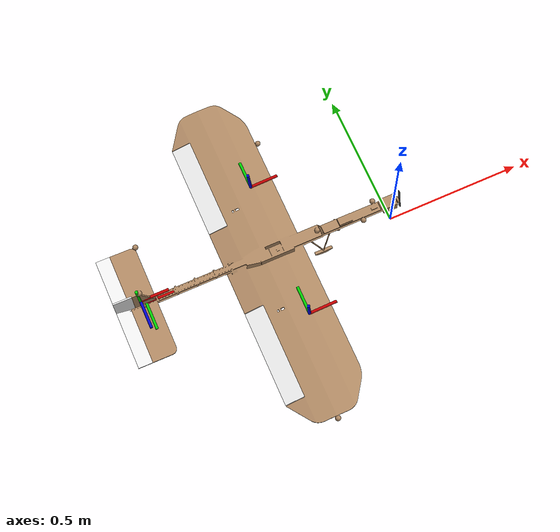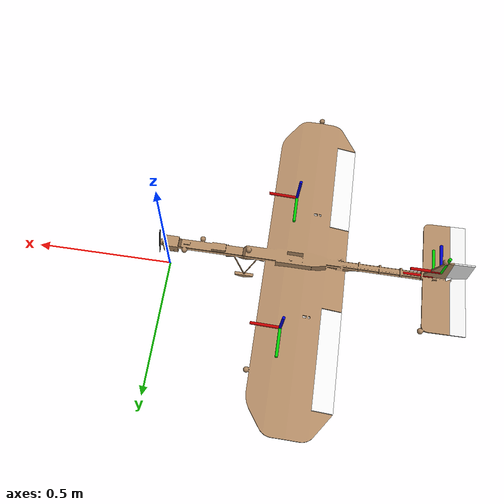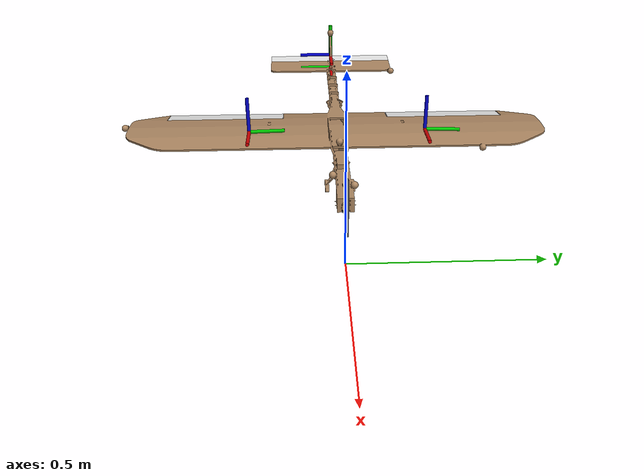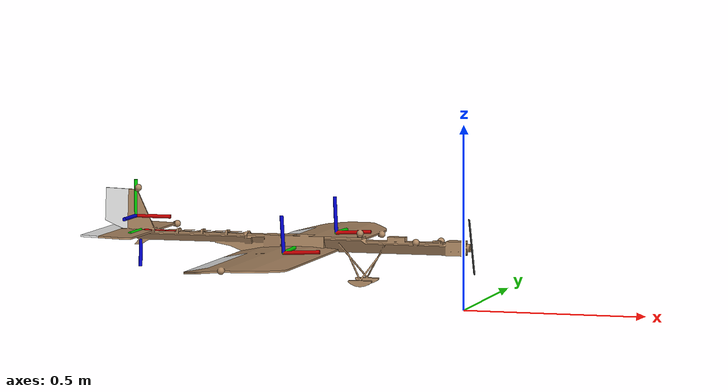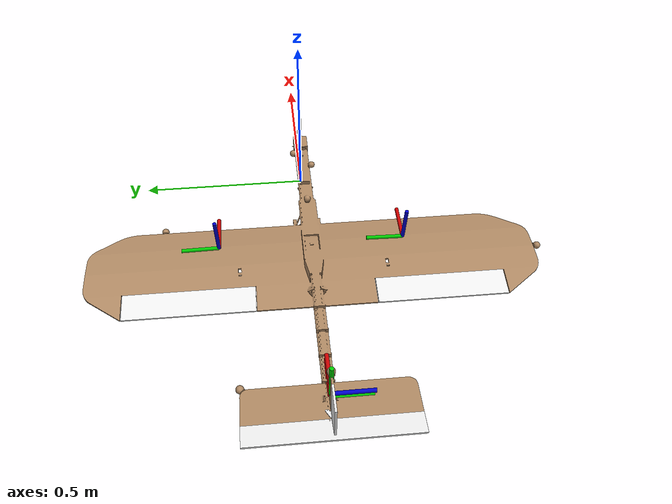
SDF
<?xml version='1.0'?>
<sdf version='1.6'>
  <model name="mini_fixedwing_11">
    <pose>0 0 0.15 0 0 0</pose>
    <link name='fuselage'>
      <inertial>
        <pose>-0.4173 0 0.0175 0 0 0</pose>
        <mass>0.268</mass>
        <inertia>
          <ixx>1.04e-2</ixx>
          <iyy>1.32e-2</iyy>
          <izz>2.33e-2</izz>
        </inertia>
      </inertial>
      <collision name='collision'>
        <pose>0 0 0 0 0 0</pose>
        <geometry>
          <mesh>
            <uri>model://mini_fixedwing_11/meshes/stl/fuselage.stl</uri>
          </mesh>
        </geometry>
        <surface>
          <friction>
            <ode>
              <mu>0.2</mu>
              <mu2>0.2</mu2>
            </ode>
          </friction>
          <contact>
            <ode>
              <max_vel>0.1</max_vel>
              <min_depth>0.001</min_depth>
            </ode>
          </contact>
        </surface>
      </collision>
      <visual name='visual'>
        <pose>0 0 0 0 0 0</pose>
        <geometry>
          <mesh>
            <uri>model://mini_fixedwing_11/meshes/stl/fuselage.stl</uri>
          </mesh>
        </geometry>
        <material>
          <ambient>0.678 0.529 0.384 1</ambient>
          <diffuse>0.678 0.529 0.384 1</diffuse>
          <specular>0.678 0.529 0.384 1</specular>
        </material>
      </visual>
      <visual name='cp_vtail'>
        <pose>-0.93 0 0.079 1.57 0 0</pose>
        <geometry>
          <mesh>
            <scale>0.1 0.1 0.1</scale>
            <uri>model://mini_fixedwing_11/meshes/axes.dae</uri> </mesh>
        </geometry>
      </visual>
      <visual name='cp_htail'>
        <pose>-0.915 0 0.04 3.14 0.035 0</pose>
        <geometry>
          <mesh>
            <scale>0.1 0.1 0.1</scale>
            <uri>model://mini_fixedwing_11/meshes/axes.dae</uri> </mesh>
        </geometry>
      </visual>
      <visual name='cp_wing_left'>
        <pose>-0.43 0.25 0.02 -0.024 -0.052 0</pose>
        <geometry>
          <mesh>
            <scale>0.1 0.1 0.1</scale>
            <uri>model://mini_fixedwing_11/meshes/axes.dae</uri> </mesh>
        </geometry>
      </visual>
      <visual name='cp_wing_right'>
        <pose>-0.43 -0.25 0.02 0.024 -0.052 0</pose>
        <geometry>
          <mesh>
            <scale>0.1 0.1 0.1</scale>
            <uri>model://mini_fixedwing_11/meshes/axes.dae</uri> </mesh>
        </geometry>
      </visual>
    </link>

    <link name='rudder'>
      <inertial>
        <pose>-0.98 0 0.079</pose>
        <mass>0.003</mass>
        <inertia>
          <ixx>3.88e-6</ixx>
          <iyy>5.04e-6</iyy>
          <izz>1.33e-6</izz>
        </inertia>
      </inertial>
      <visual name='visual'>
        <pose>0 0 0 0 0 0</pose>
        <cast_shadows>0</cast_shadows>
        <geometry>
          <mesh>
            <uri>model://mini_fixedwing_11/meshes/stl/rudder.stl</uri>
          </mesh>
        </geometry>
        <material>
          <script>
            <name>Gazebo/White</name>
          </script>
        </material>
      </visual>
    </link>

    <joint name='rudder_joint' type='revolute'>
      <pose>-0.95 0 0.059</pose>
      <parent>fuselage</parent>
      <child>rudder</child>
      <axis>
        <xyz>0 0 1</xyz>
        <dynamics>
          <damping>0.1</damping>
        </dynamics>
        <limit>
          <lower>-0.5</lower>
          <upper>0.5</upper>
        </limit>
      </axis>
      <physics>
        <ode>
          <implicit_spring_damper>1</implicit_spring_damper>
        </ode>
      </physics>
    </joint>

    <link name='elevator'>
      <inertial>
        <pose>-0.995 0 0.04</pose>
        <mass>0.007</mass>
        <inertia>
          <ixx>7.37e-5</ixx>
          <iyy>1.86e-6</iyy>
          <izz>7.53e-5</izz>
        </inertia>
      </inertial>
      <visual name='visual'>
        <pose>0 0 0 0 0 0</pose>
        <cast_shadows>0</cast_shadows>
        <geometry>
          <mesh>
            <uri>model://mini_fixedwing_11/meshes/stl/elevator.stl</uri>
          </mesh>
        </geometry>
        <material>
          <script>
            <name>Gazebo/White</name>
          </script>
        </material>
      </visual>
    </link>

    <joint name='elevator_joint' type='revolute'>
      <pose>-0.97 0 0.04</pose>
      <parent>fuselage</parent>
      <child>elevator</child>
      <axis>
        <xyz>0 1 0</xyz>
        <dynamics>
          <damping>0.1</damping>
        </dynamics>
        <limit>
          <lower>-0.5</lower>
          <upper>0.5</upper>
        </limit>
      </axis>
      <physics>
        <ode>
          <implicit_spring_damper>1</implicit_spring_damper>
        </ode>
      </physics>
    </joint>

    <link name='aileron_left'>
      <inertial>
        <pose>-0.59 0.32 0.005</pose>
        <mass>0.008</mass>
        <inertia>
          <ixx>8.30e-5</ixx>
          <iyy>3.95e-6</iyy>
          <izz>8.67e-5</izz>
        </inertia>
      </inertial>
      <visual name='visual'>
        <pose>0 0 0 0 0 0</pose>
        <cast_shadows>0</cast_shadows>
        <geometry>
          <mesh>
            <uri>model://mini_fixedwing_11/meshes/stl/aileron_left.stl</uri>
          </mesh>
        </geometry>
        <material>
          <script>
            <name>Gazebo/White</name>
          </script>
        </material>
      </visual>
    </link>

    <joint name='aileron_left_joint' type='revolute'>
      <pose>-0.56 0.32 0.005</pose>
      <parent>fuselage</parent>
      <child>aileron_left</child>
      <axis>
        <xyz>0 -1 0</xyz>
        <dynamics>
          <damping>0.1</damping>
        </dynamics>
        <limit>
          <lower>-0.5</lower>
          <upper>0.5</upper>
        </limit>
      </axis>
      <physics>
        <ode>
          <implicit_spring_damper>1</implicit_spring_damper>
        </ode>
      </physics>
    </joint>

    <link name='aileron_right'>
      <inertial>
        <pose>-0.59 -0.32 0.005</pose>
        <mass>0.008</mass>
        <inertia>
          <ixx>8.3e-5</ixx>
          <iyy>3.95e-6</iyy>
          <izz>8.67e-5</izz>
        </inertia>
      </inertial>
      <visual name='visual'>
        <pose>0 0 0 0 0 0</pose>
        <cast_shadows>0</cast_shadows>
        <geometry>
          <mesh>
            <uri>model://mini_fixedwing_11/meshes/stl/aileron_right.stl</uri>
          </mesh>
        </geometry>
        <material>
          <script>
            <name>Gazebo/White</name>
          </script>
        </material>
      </visual>
    </link>

    <joint name='aileron_right_joint' type='revolute'>
      <pose>-0.56 -0.32 0.005</pose>
      <parent>fuselage</parent>
      <child>aileron_right</child>
      <axis>
        <xyz>0 -1 0</xyz>
        <dynamics>
          <damping>0.1</damping>
        </dynamics>
        <limit>
          <lower>-0.5</lower>
          <upper>0.5</upper>
        </limit>
      </axis>
      <physics>
        <ode>
          <implicit_spring_damper>1</implicit_spring_damper>
        </ode>
      </physics>
    </joint>

    <link name='propeller'>
      <pose>0 0 0 0 -0.1 0</pose>
      <inertial>
        <pose>0 0 0.02 0 0 0</pose>
        <mass>0.001</mass>
        <inertia>
          <ixx>1e-6</ixx>
          <iyy>1e-6</iyy>
          <izz>1e-6</izz>
        </inertia>
      </inertial>
      <visual name='visual'>
        <pose>0 0 0 0 0 0</pose>
        <cast_shadows>0</cast_shadows>
        <geometry>
          <mesh>
            <uri>model://mini_fixedwing_11/meshes/stl/propeller.stl</uri>
          </mesh>
        </geometry>
        <material>
          <script>
            <name>Gazebo/DarkGrey</name>
          </script>
        </material>
      </visual>
    </link>

    <joint name='propeller_joint' type='revolute'>
      <pose>0 0 0.02 0 0 0</pose>
      <parent>fuselage</parent>
      <child>propeller</child>
      <axis>
        <xyz>1 0 0</xyz>
      </axis>
    </joint>

    <include>
      <uri>model://gps</uri>
      <pose>0 0 0 0 0 0</pose>
      <name>gps</name>
    </include>
    <joint name='gps_joint' type='fixed'>
      <child>gps::link</child>
      <parent>fuselage</parent>
    </joint>

    <plugin name="vtail" filename="libLiftDragPlugin2.so">
      <pose>-0.93 0 0.079 1.57 0 0</pose>
      <cL0>0</cL0>
      <cLa>3.974</cLa>
      <cm0>0</cm0>
      <cma>0</cma>
      <cD0>0.03</cD0>
      <kcDcL>0.1</kcDcL>
      <alpha_stall>0.1832</alpha_stall>
      <cLa_stall>-3.85</cLa_stall>
      <cma_stall>0</cma_stall>
      <area>0.01855</area>
      <air_density>1.2041</air_density>
      <link_name>fuselage</link_name>
      <control_joint_name>rudder_joint</control_joint_name>
      <control_joint_rad_to_cL>1.0</control_joint_rad_to_cL>
      <control_joint_rad_to_cm>-0.25</control_joint_rad_to_cm>
    </plugin>

    <plugin name="htail" filename="libLiftDragPlugin2.so">
      <pose>-0.915 0 0.04 3.14 0.035 0</pose>
      <cL0>0.108</cL0>
      <cLa>3.09</cLa>
      <cm0>-0.01</cm0>
      <cma>0</cma>
      <area>0.06</area>
      <alpha_stall>0.12</alpha_stall>
      <cD0>0.03</cD0>
      <kcDcL>0.1</kcDcL>
      <cLa_stall>-3.03</cLa_stall>
      <cma_stall>0</cma_stall>
      <air_density>1.2041</air_density>
      <link_name>fuselage</link_name>
      <control_joint_name>elevator_joint</control_joint_name>
      <control_joint_rad_to_cL>1.0</control_joint_rad_to_cL>
      <control_joint_rad_to_cm>-0.25</control_joint_rad_to_cm>
      <verbose>0</verbose>
    </plugin>

    <plugin name="wing_left" filename="libLiftDragPlugin2.so">
      <pose>-0.43 0.25 0.02 -0.024 -0.052 0</pose>
      <cL0>0.3079</cL0>
      <cLa>4.38</cLa>
      <!--check cm0-->
      <cm0>0</cm0>
      <cma>0</cma>
      <cD0>0.03</cD0>
      <kcDcL>0.1</kcDcL>
      <alpha_stall>0.157</alpha_stall>
      <cLa_stall>-3.92</cLa_stall>
      <cma_stall>-0.428</cma_stall>
      <area>0.1595</area>
      <air_density>1.2041</air_density>
      <link_name>fuselage</link_name>
      <control_joint_name>aileron_left_joint</control_joint_name>
      <control_joint_rad_to_cL>1.0</control_joint_rad_to_cL>
      <control_joint_rad_to_cm>-0.25</control_joint_rad_to_cm>
      <verbose>0</verbose>
    </plugin>

    <plugin name="wing_right" filename="libLiftDragPlugin2.so">
      <pose>-0.43 -0.25 0.02 0.024 -0.052 0</pose>
      <cL0>0.3079</cL0>
      <cLa>4.38</cLa>
      <!--check cm0-->
      <cm0>0</cm0>
      <cma>0</cma>
      <cD0>0.03</cD0>
      <kcDcL>0.1</kcDcL>
      <alpha_stall>0.157</alpha_stall>
      <cLa_stall>-3.92</cLa_stall>
      <cma_stall>-0.428</cma_stall>
      <area>0.1595</area>
      <air_density>1.2041</air_density>
      <link_name>fuselage</link_name>
      <control_joint_name>aileron_right_joint</control_joint_name>
      <control_joint_rad_to_cL>1.0</control_joint_rad_to_cL>
      <control_joint_rad_to_cm>-0.25</control_joint_rad_to_cm>
      <verbose>0</verbose>
    </plugin>

    <!--Start PX4 autopilot-->

    <link name='imu_link'>
      <pose>-0.4173 0 0.0175 0 0 0</pose>
      <inertial>
        <mass>0.001</mass>
        <inertia>
          <ixx>1e-05</ixx>
          <iyy>1e-05</iyy>
          <izz>1e-05</izz>
        </inertia>
      </inertial>
    </link>

    <joint name='imu_joint' type='revolute'>
      <child>imu_link</child>
      <parent>fuselage</parent>
      <axis>
        <xyz>1 0 0</xyz>
        <limit>
          <lower>0</lower>
          <upper>0</upper>
          <effort>0</effort>
          <velocity>0</velocity>
        </limit>
        <dynamics>
          <spring_reference>0</spring_reference>
          <spring_stiffness>0</spring_stiffness>
        </dynamics>
        <use_parent_model_frame>1</use_parent_model_frame>
      </axis>
    </joint>

    <link name='airspeed_link'>
      <pose>0 0 0 0 0 0</pose>
      <inertial>
        <pose>0 0 0 0 0 0</pose>
        <mass>0.015</mass>
        <inertia>
          <ixx>1e-05</ixx>
          <ixy>0</ixy>
          <ixz>0</ixz>
          <iyy>1e-05</iyy>
          <iyz>0</iyz>
          <izz>1e-05</izz>
        </inertia>
      </inertial>
    </link>
    <joint name='airspeed_joint' type='revolute'>
      <child>airspeed_link</child>
      <parent>fuselage</parent>
      <axis>
        <xyz>1 0 0</xyz>
        <limit>
          <lower>0</lower>
          <upper>0</upper>
          <effort>0</effort>
          <velocity>0</velocity>
        </limit>
        <dynamics>
          <spring_reference>0</spring_reference>
          <spring_stiffness>0</spring_stiffness>
        </dynamics>
        <use_parent_model_frame>1</use_parent_model_frame>
      </axis>
    </joint>

    <plugin name='gazebo_imu_plugin' filename='libgazebo_imu_plugin.so'>
      <robotNamespace></robotNamespace>
      <linkName>imu_link</linkName>
      <imuTopic>/imu</imuTopic>
      <gyroscopeNoiseDensity>0.0003394</gyroscopeNoiseDensity>
      <gyroscopeRandomWalk>3.8785e-05</gyroscopeRandomWalk>
      <gyroscopeBiasCorrelationTime>1000.0</gyroscopeBiasCorrelationTime>
      <gyroscopeTurnOnBiasSigma>0.0087</gyroscopeTurnOnBiasSigma>
      <accelerometerNoiseDensity>0.004</accelerometerNoiseDensity>
      <accelerometerRandomWalk>0.006</accelerometerRandomWalk>
      <accelerometerBiasCorrelationTime>300.0</accelerometerBiasCorrelationTime>
      <accelerometerTurnOnBiasSigma>0.196</accelerometerTurnOnBiasSigma>
    </plugin>

    <plugin name='groundtruth_plugin' filename='libgazebo_groundtruth_plugin.so'>
      <robotNamespace/>
    </plugin>

    <plugin name='magnetometer_plugin' filename='libgazebo_magnetometer_plugin.so'>
      <robotNamespace/>
      <pubRate>100</pubRate>
      <noiseDensity>0.0004</noiseDensity>
      <randomWalk>6.4e-06</randomWalk>
      <biasCorrelationTime>600</biasCorrelationTime>
      <magTopic>/mag</magTopic>
    </plugin>

    <plugin name='barometer_plugin' filename='libgazebo_barometer_plugin.so'>
      <robotNamespace/>
      <pubRate>50</pubRate>
      <baroTopic>/baro</baroTopic>
    </plugin>

    <plugin name='airspeed_plugin' filename='libgazebo_airspeed_plugin.so'>
      <robotNamespace/>
      <linkName>airspeed_link</linkName>
    </plugin>

    <plugin name='motor_plugin' filename='libMotorPlugin.so'>
      <gztopic>/throttle1</gztopic>
      <joint_name>propeller_joint</joint_name>
      <prop_name>propeller</prop_name>
      <diameter>6</diameter>
      <ct>0.1189	0.0006	0.1167	-0.4054	0.1949</ct>
      <cp>0.1285	-0.3526	0.1677	0.0228	0.1285</cp>
      <kV>2200</kV>
      <i0>0.45</i0>
      <iMax>30</iMax>
      <r0>0.25</r0>
      <battV>7.4</battV>
      <capacity>530</capacity>
      <axis_num>0</axis_num>
      <motor_eff>0.7</motor_eff>
      <verbose>1</verbose>
    </plugin>

    <plugin name='mavlink_interface' filename='libgazebo_mavlink_interface.so'>
      <robotNamespace></robotNamespace>
      <imuSubTopic>/imu</imuSubTopic>

      <magSubTopic>/mag</magSubTopic>
      <baroSubTopic>/baro</baroSubTopic>
      <mavlink_addr>INADDR_ANY</mavlink_addr>
      <mavlink_udp_port>14560</mavlink_udp_port>
      <serialEnabled>false</serialEnabled>
      <serialDevice>/dev/ttyACM0</serialDevice>
      <baudRate>921600</baudRate>
      <qgc_addr>INADDR_ANY</qgc_addr>
      <qgc_udp_port>14550</qgc_udp_port>
      <sdk_addr>INADDR_ANY</sdk_addr>
      <sdk_udp_port>14540</sdk_udp_port>
      <hil_mode>false</hil_mode>
      <hil_state_level>false</hil_state_level>
      <enable_lockstep>true</enable_lockstep>
      <use_tcp>true</use_tcp>
      <motorSpeedCommandPubTopic>/gazebo/command/motor_speed</motorSpeedCommandPubTopic>
      <control_channels>
        <channel name="rudder">
          <input_index>2</input_index>
          <input_offset>0</input_offset>
          <input_scaling>0.28</input_scaling>
          <zero_position_disarmed>0</zero_position_disarmed>
          <zero_position_armed>0</zero_position_armed>
          <joint_control_type>position</joint_control_type>
          <joint_name>rudder_joint</joint_name>
          <joint_control_pid>
            <p>10</p>
            <i>0</i>
            <d>0</d>
            <iMax>0</iMax>
            <iMin>0</iMin>
            <cmdMax>0.28</cmdMax>
            <cmdMin>-0.28</cmdMin>
          </joint_control_pid>
        </channel>
        <channel name="puller">
          <input_index>4</input_index>
          <input_offset>0</input_offset>
          <input_scaling>1.0</input_scaling>
          <zero_position_disarmed>0</zero_position_disarmed>
          <zero_position_armed>0</zero_position_armed>
          <joint_control_type>position_gztopic</joint_control_type>
          <gztopic>/throttle1</gztopic>
          <joint_name>propeller_joint</joint_name>
        </channel>
        <channel name="aileron_left">
          <input_index>5</input_index>
          <input_offset>0</input_offset>
          <input_scaling>-0.28</input_scaling>
          <zero_position_disarmed>0</zero_position_disarmed>
          <zero_position_armed>0</zero_position_armed>
          <joint_control_type>position</joint_control_type>
          <joint_name>aileron_left_joint</joint_name>
          <joint_control_pid>
            <p>10</p>
            <i>0</i>
            <d>0</d>
            <iMax>0</iMax>
            <iMin>0</iMin>
            <cmdMax>0.28</cmdMax>
            <cmdMin>-0.28</cmdMin>
          </joint_control_pid>
        </channel>
        <channel name="aileron_right">
          <input_index>6</input_index>
          <input_offset>0</input_offset>
          <input_scaling>-0.28</input_scaling>
          <zero_position_disarmed>0</zero_position_disarmed>
          <zero_position_armed>0</zero_position_armed>
          <joint_control_type>position</joint_control_type>
          <joint_name>aileron_right_joint</joint_name>
          <joint_control_pid>
            <p>10</p>
            <i>0</i>
            <d>0</d>
            <iMax>0</iMax>
            <iMin>0</iMin>
            <cmdMax>0.28</cmdMax>
            <cmdMin>-0.28</cmdMin>
          </joint_control_pid>
        </channel>
        <channel name="elevator">
          <input_index>7</input_index>
          <input_offset>0</input_offset>
          <input_scaling>0.28</input_scaling>
          <zero_position_disarmed>0</zero_position_disarmed>
          <zero_position_armed>0</zero_position_armed>
          <joint_control_type>position</joint_control_type>
          <joint_name>elevator_joint</joint_name>
          <joint_control_pid>
            <p>10</p>
            <i>0</i>
            <d>0</d>
            <iMax>0</iMax>
            <iMin>0</iMin>
            <cmdMax>0.28</cmdMax>
            <cmdMin>-0.28</cmdMin>
          </joint_control_pid>
        </channel>
      </control_channels>

    </plugin>
  </model>

</sdf>

<!-- vim: set et fenc=utf-8 ft=xml ff=unix sts=0 sw=2 ts=2 : -->

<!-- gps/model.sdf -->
<sdf version="1.6">
  <model name="gps">
    <link name="link">
      <pose>0 0 0 0 0 0</pose>
      <inertial>
        <pose>0 0 0 0 0 0</pose>
        <mass>0.015</mass>
        <inertia>
          <ixx>1e-05</ixx>
          <ixy>0</ixy>
          <ixz>0</ixz>
          <iyy>1e-05</iyy>
          <iyz>0</iyz>
          <izz>1e-05</izz>
        </inertia>
      </inertial>
      <visual name="visual">
        <geometry>
          <cylinder>
            <radius>0.01</radius>
            <length>0.002</length>
          </cylinder>
        </geometry>
        <material>
          <script>
            <name>Gazebo/Black</name>
            <uri>file://usr/share/gz/gz-sim8/media/gazebo.material</uri>
          </script>
        </material>
      </visual>
      <sensor name="gps" type="gps">
        <pose>0 0 0 0 0 0</pose>
        <update_rate>5.0</update_rate>
        <always_on>true</always_on>
        <visualize>false</visualize>
        <!-- GpsSensor noise currently not used -->
        <plugin name="gps_plugin" filename="libgazebo_gps_plugin.so">
          <robotNamespace></robotNamespace>
          <gpsNoise>true</gpsNoise>
          <gpsXYRandomWalk>2.0</gpsXYRandomWalk>
          <gpsZRandomWalk>4.0</gpsZRandomWalk>
          <gpsXYNoiseDensity>2.0e-4</gpsXYNoiseDensity>
          <gpsZNoiseDensity>4.0e-4</gpsZNoiseDensity>
          <gpsVXYNoiseDensity>0.2</gpsVXYNoiseDensity>
          <gpsVZNoiseDensity>0.4</gpsVZNoiseDensity>
        </plugin>
      </sensor>
    </link>
  </model>
</sdf>
